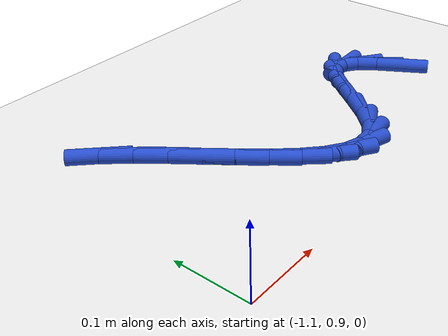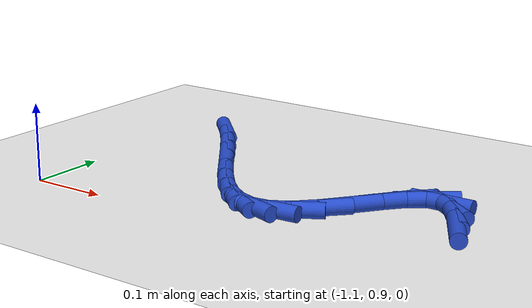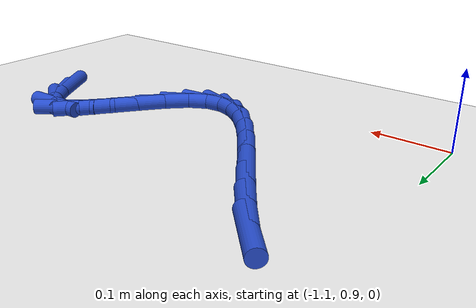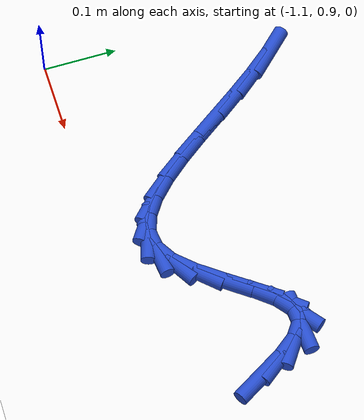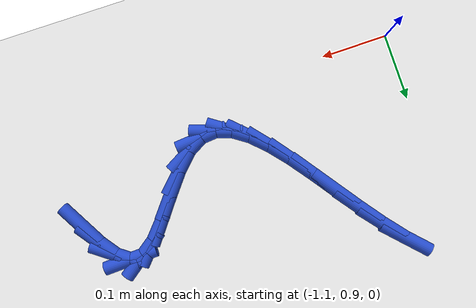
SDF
<sdf version="1.6">
 <world name="default">
  <model name="ground_plane">
   <static>1</static>
   <link name="link">
    <collision name="collision">
     <geometry><plane><normal>0 0 1</normal><size>100 100</size></plane></geometry>
     <surface><friction><ode><mu>100</mu><mu2>50</mu2></ode></friction></surface>
    </collision>
    <visual name="visual">
     <cast_shadows>0</cast_shadows>
     <geometry><plane><normal>0 0 1</normal><size>100 100</size></plane></geometry>
     <material>
      <script><uri>file://media/materials/scripts/gazebo.material</uri><name>Gazebo/WhiteGlow</name></script>
     </material>
    </visual>
   </link>
  </model>
  <model name="line">
   <link name="link_39">
    <pose>-0.5814211199564625 1.0289183251470821 0.01 0 1.57 -1.0534780282573086</pose>
    <collision name="collision">
     <geometry><cylinder><radius>0.01</radius><length>0.08</length></cylinder></geometry>
    </collision>
    <visual name="visual">
     <material>
      <script><name>Gazebo/Blue</name><uri>file://media/materials/scripts/gazebo.material</uri></script>
     </material>
     <geometry><cylinder><radius>0.01</radius><length>0.08</length></cylinder></geometry>
    </visual>
   </link>
   <link name="link_40">
    <pose>-0.5990995234927567 1.0599872237325112 0.01 0 1.57 -0.9344402093378655</pose>
    <collision name="collision">
     <geometry><cylinder><radius>0.01</radius><length>0.08</length></cylinder></geometry>
    </collision>
    <visual name="visual">
     <material>
      <script><name>Gazebo/Blue</name><uri>file://media/materials/scripts/gazebo.material</uri></script>
     </material>
     <geometry><cylinder><radius>0.01</radius><length>0.08</length></cylinder></geometry>
    </visual>
   </link>
   <link name="link_41">
    <pose>-0.616585030533555 1.083651615376723 0.01 0 1.57 -0.6301415831349697</pose>
    <collision name="collision">
     <geometry><cylinder><radius>0.01</radius><length>0.08</length></cylinder></geometry>
    </collision>
    <visual name="visual">
     <material>
      <script><name>Gazebo/Blue</name><uri>file://media/materials/scripts/gazebo.material</uri></script>
     </material>
     <geometry><cylinder><radius>0.01</radius><length>0.08</length></cylinder></geometry>
    </visual>
   </link>
   <link name="link_42">
    <pose>-0.634523591949463 1.0967347751033896 0.01 0 1.57 0.03483097757005292</pose>
    <collision name="collision">
     <geometry><cylinder><radius>0.01</radius><length>0.08</length></cylinder></geometry>
    </collision>
    <visual name="visual">
     <material>
      <script><name>Gazebo/Blue</name><uri>file://media/materials/scripts/gazebo.material</uri></script>
     </material>
     <geometry><cylinder><radius>0.01</radius><length>0.08</length></cylinder></geometry>
    </visual>
   </link>
   <link name="link_43">
    <pose>-0.6535598181863246 1.096071456467224 0.01 0 1.57 0.6375500496984747</pose>
    <collision name="collision">
     <geometry><cylinder><radius>0.01</radius><length>0.08</length></cylinder></geometry>
    </collision>
    <visual name="visual">
     <material>
      <script><name>Gazebo/Blue</name><uri>file://media/materials/scripts/gazebo.material</uri></script>
     </material>
     <geometry><cylinder><radius>0.01</radius><length>0.08</length></cylinder></geometry>
    </visual>
   </link>
   <link name="link_44">
    <pose>-0.6740591903004785 1.0808866966489687 0.01 0 1.57 0.8591065303904463</pose>
    <collision name="collision">
     <geometry><cylinder><radius>0.01</radius><length>0.08</length></cylinder></geometry>
    </collision>
    <visual name="visual">
     <material>
      <script><name>Gazebo/Blue</name><uri>file://media/materials/scripts/gazebo.material</uri></script>
     </material>
     <geometry><cylinder><radius>0.01</radius><length>0.08</length></cylinder></geometry>
    </visual>
   </link>
   <link name="link_45">
    <pose>-0.6957668722198219 1.0557175276633386 0.01 0 1.57 0.9240536739080228</pose>
    <collision name="collision">
     <geometry><cylinder><radius>0.01</radius><length>0.08</length></cylinder></geometry>
    </collision>
    <visual name="visual">
     <material>
      <script><name>Gazebo/Blue</name><uri>file://media/materials/scripts/gazebo.material</uri></script>
     </material>
     <geometry><cylinder><radius>0.01</radius><length>0.08</length></cylinder></geometry>
    </visual>
   </link>
   <link name="link_46">
    <pose>-0.7183444744359614 1.0258164791335898 0.01 0 1.57 0.9043109877833828</pose>
    <collision name="collision">
     <geometry><cylinder><radius>0.01</radius><length>0.08</length></cylinder></geometry>
    </collision>
    <visual name="visual">
     <material>
      <script><name>Gazebo/Blue</name><uri>file://media/materials/scripts/gazebo.material</uri></script>
     </material>
     <geometry><cylinder><radius>0.01</radius><length>0.08</length></cylinder></geometry>
    </visual>
   </link>
   <link name="link_47">
    <pose>-0.7414536074405028 0.9964360806829778 0.01 0 1.57 0.7918987701724323</pose>
    <collision name="collision">
     <geometry><cylinder><radius>0.01</radius><length>0.08</length></cylinder></geometry>
    </collision>
    <visual name="visual">
     <material>
      <script><name>Gazebo/Blue</name><uri>file://media/materials/scripts/gazebo.material</uri></script>
     </material>
     <geometry><cylinder><radius>0.01</radius><length>0.08</length></cylinder></geometry>
    </visual>
   </link>
   <link name="link_48">
    <pose>-0.764755881725053 0.9728288619347593 0.01 0 1.57 0.5141964157422834</pose>
    <collision name="collision">
     <geometry><cylinder><radius>0.01</radius><length>0.08</length></cylinder></geometry>
    </collision>
    <visual name="visual">
     <material>
      <script><name>Gazebo/Blue</name><uri>file://media/materials/scripts/gazebo.material</uri></script>
     </material>
     <geometry><cylinder><radius>0.01</radius><length>0.08</length></cylinder></geometry>
    </visual>
   </link>
   <link name="link_49">
    <pose>-0.787945919766768 0.9597292475000573 0.01 0 1.57 0.08817299291202654</pose>
    <collision name="collision">
     <geometry><cylinder><radius>0.01</radius><length>0.08</length></cylinder></geometry>
    </collision>
    <visual name="visual">
     <material>
      <script><name>Gazebo/Blue</name><uri>file://media/materials/scripts/gazebo.material</uri></script>
     </material>
     <geometry><cylinder><radius>0.01</radius><length>0.08</length></cylinder></geometry>
    </visual>
   </link>
   <link name="link_50">
    <pose>-0.8109846220027547 0.9576925754136051 0.01 0 1.57 -0.3179568789169306</pose>
    <collision name="collision">
     <geometry><cylinder><radius>0.01</radius><length>0.08</length></cylinder></geometry>
    </collision>
    <visual name="visual">
     <material>
      <script><name>Gazebo/Blue</name><uri>file://media/materials/scripts/gazebo.material</uri></script>
     </material>
     <geometry><cylinder><radius>0.01</radius><length>0.08</length></cylinder></geometry>
    </visual>
   </link>
   <link name="link_51">
    <pose>-0.8339615560401962 0.9652548230263346 0.01 0 1.57 -0.5983718168953571</pose>
    <collision name="collision">
     <geometry><cylinder><radius>0.01</radius><length>0.08</length></cylinder></geometry>
    </collision>
    <visual name="visual">
     <material>
      <script><name>Gazebo/Blue</name><uri>file://media/materials/scripts/gazebo.material</uri></script>
     </material>
     <geometry><cylinder><radius>0.01</radius><length>0.08</length></cylinder></geometry>
    </visual>
   </link>
   <link name="link_52">
    <pose>-0.856967125181823 0.9809388519057919 0.01 0 1.57 -0.767888876762374</pose>
    <collision name="collision">
     <geometry><cylinder><radius>0.01</radius><length>0.08</length></cylinder></geometry>
    </collision>
    <visual name="visual">
     <material>
      <script><name>Gazebo/Blue</name><uri>file://media/materials/scripts/gazebo.material</uri></script>
     </material>
     <geometry><cylinder><radius>0.01</radius><length>0.08</length></cylinder></geometry>
    </visual>
   </link>
   <link name="link_53">
    <pose>-0.880091732730365 1.0032675236195232 0.01 0 1.57 -0.8670988046629311</pose>
    <collision name="collision">
     <geometry><cylinder><radius>0.01</radius><length>0.08</length></cylinder></geometry>
    </collision>
    <visual name="visual">
     <material>
      <script><name>Gazebo/Blue</name><uri>file://media/materials/scripts/gazebo.material</uri></script>
     </material>
     <geometry><cylinder><radius>0.01</radius><length>0.08</length></cylinder></geometry>
    </visual>
   </link>
   <link name="link_54">
    <pose>-0.9034257819885528 1.0307636997350755 0.01 0 1.57 -0.9223069560454744</pose>
    <collision name="collision">
     <geometry><cylinder><radius>0.01</radius><length>0.08</length></cylinder></geometry>
    </collision>
    <visual name="visual">
     <material>
      <script><name>Gazebo/Blue</name><uri>file://media/materials/scripts/gazebo.material</uri></script>
     </material>
     <geometry><cylinder><radius>0.01</radius><length>0.08</length></cylinder></geometry>
    </visual>
   </link>
   <link name="link_55">
    <pose>-0.9270596762591161 1.061950241819995 0.01 0 1.57 -0.9472405888301</pose>
    <collision name="collision">
     <geometry><cylinder><radius>0.01</radius><length>0.08</length></cylinder></geometry>
    </collision>
    <visual name="visual">
     <material>
      <script><name>Gazebo/Blue</name><uri>file://media/materials/scripts/gazebo.material</uri></script>
     </material>
     <geometry><cylinder><radius>0.01</radius><length>0.08</length></cylinder></geometry>
    </visual>
   </link>
   <link name="link_56">
    <pose>-0.9510838188447861 1.0953500114418289 0.01 0 1.57 -0.9481835674321908</pose>
    <collision name="collision">
     <geometry><cylinder><radius>0.01</radius><length>0.08</length></cylinder></geometry>
    </collision>
    <visual name="visual">
     <material>
      <script><name>Gazebo/Blue</name><uri>file://media/materials/scripts/gazebo.material</uri></script>
     </material>
     <geometry><cylinder><radius>0.01</radius><length>0.08</length></cylinder></geometry>
    </visual>
   </link>
   <link name="link_57">
    <pose>-0.975588613048292 1.129485870168123 0.01 0 1.57 -0.9267254650190411</pose>
    <collision name="collision">
     <geometry><cylinder><radius>0.01</radius><length>0.08</length></cylinder></geometry>
    </collision>
    <visual name="visual">
     <material>
      <script><name>Gazebo/Blue</name><uri>file://media/materials/scripts/gazebo.material</uri></script>
     </material>
     <geometry><cylinder><radius>0.01</radius><length>0.08</length></cylinder></geometry>
    </visual>
   </link>
   <link name="link_58">
    <pose>-1.0006644621723648 1.162880679566424 0.01 0 1.57 -0.8806796530365831</pose>
    <collision name="collision">
     <geometry><cylinder><radius>0.01</radius><length>0.08</length></cylinder></geometry>
    </collision>
    <visual name="visual">
     <material>
      <script><name>Gazebo/Blue</name><uri>file://media/materials/scripts/gazebo.material</uri></script>
     </material>
     <geometry><cylinder><radius>0.01</radius><length>0.08</length></cylinder></geometry>
    </visual>
   </link>
   <link name="link_59">
    <pose>-1.0264017695197345 1.1940573012042786 0.01 0 1.57 -0.8037788620176313</pose>
    <collision name="collision">
     <geometry><cylinder><radius>0.01</radius><length>0.08</length></cylinder></geometry>
    </collision>
    <visual name="visual">
     <material>
      <script><name>Gazebo/Blue</name><uri>file://media/materials/scripts/gazebo.material</uri></script>
     </material>
     <geometry><cylinder><radius>0.01</radius><length>0.08</length></cylinder></geometry>
    </visual>
   </link>
  </model>
 </world>
</sdf>
